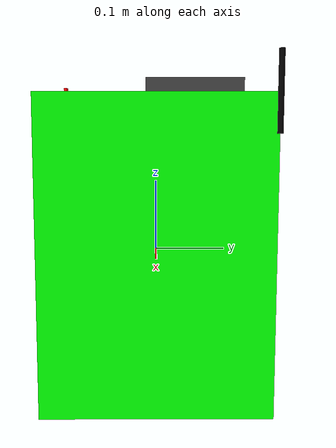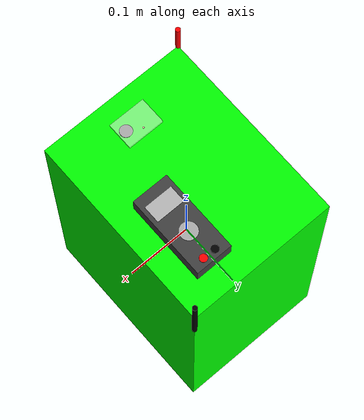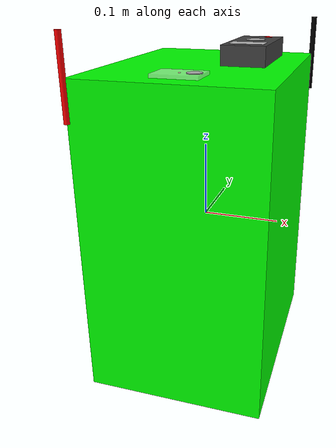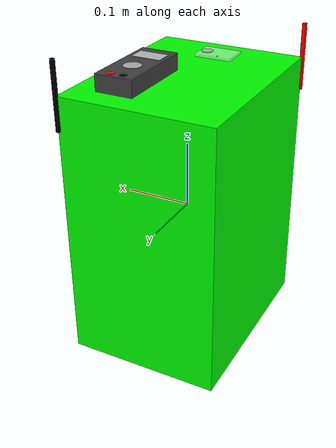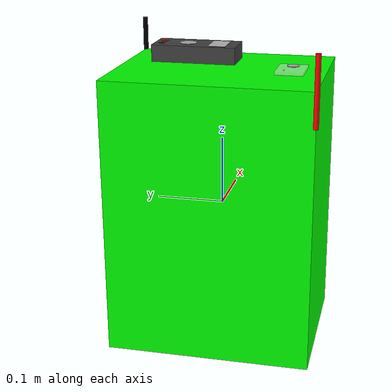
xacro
<?xml version='1.0' encoding='utf-8'?>
<robot xmlns:xacro="http://www.ros.org/wiki/xacro" name="voltmeter_circuit">

    <!-- Arguments -->

    <xacro:arg name="board_id" default="voltmeter_circuit"/>

    <!-- Imported elements -->

    <xacro:include filename="$(find robothon_2023_board_description)/urdf/voltmeter_circuit.urdf.xacro"/>

    <!-- Models -->

    <xacro:task_board board_id="$(arg board_id)" lenght_base_link_box= "0.23" width_base_link_box= "0.30" height_base_link_box= "0.41" height_voltmeter="0.025" height_battery = "0.0043"/>

</robot>

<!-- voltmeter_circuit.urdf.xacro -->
<robot xmlns:xacro="http://www.ros.org/wiki/xacro" name="task_board" lenght_base_link_box= "0.23" width_base_link_box= "0.30" height_base_link_box= "0.41" height_voltmeter="0.025" height_battery="0.0043">

    <!-- Imported elements -->

    <xacro:include filename="$(find robothon_2023_board_description)/urdf/task_board.gazebo.xacro"/>

    <!-- Models -->

    <xacro:macro name="task_board" params="board_id:='task_board' lenght_base_link_box width_base_link_box height_base_link_box height_voltmeter height_battery">

        <xacro:task_board_gazebo board_id="${board_id}"/>

        <link name="${board_id}_base_link">
            <inertial>
                <origin xyz="0 0 ${height_base_link_box/2}" rpy="0 0 0"/>
                <mass value="0.1"/>
                <inertia ixx="0.3" ixy="0.0" ixz="0.0" iyy="0.3" iyz="0.0" izz="0.3"/>
            </inertial>
            <visual>
                <origin xyz="0 0 0" rpy="0 0 0"/>
                <geometry>
                    <box size="${lenght_base_link_box} ${width_base_link_box} ${height_base_link_box}"/>
                </geometry>
                <material name="">
                    <color rgba="0 1 0 1"/>
                </material>
            </visual>
            <collision>
                <origin xyz="0 0 0" rpy="0 0 0"/>
                <geometry>
                    <box size="0.10 0.10 0.10"/>
                </geometry>
            </collision>
        </link>

        <!-- Battery plastic box-->
        <joint name="${board_id}_battery_box_joint" type="fixed">
            <origin xyz="0 -0.10 ${height_base_link_box/2 + height_battery/2}" rpy="${pi} 0 0"/>
            <parent link="${board_id}_base_link"/>
            <child link="${board_id}_battery_box_link"/>
        </joint>

        <link name="${board_id}_battery_box_link">
            <inertial>
                <origin xyz="0 0 0" rpy="0 0 0"/>
                <mass value="2.0"/>
                <inertia ixx="0.3" ixy="0.0" ixz="0.0" iyy="0.3" iyz="0.0" izz="0.3"/>
            </inertial>
            <visual>
                <origin xyz="0 0 0" rpy="0 0 0"/>
                <geometry>
                    <box size="0.05655 0.04072 ${height_battery}"/>
                </geometry>
                <material name="">
                    <color rgba=" 1 1 1 0.5"/>
                </material>
            </visual>
            <collision>
                <origin xyz="0 0 0" rpy="0 0 0"/>
                <geometry>
                    <box size="0.05655 0.04072 ${height_battery}"/>
                </geometry>
            </collision>
        </link>

        <!-- Battery -->
        <joint name="${board_id}_battery_joint" type="fixed">
            <origin xyz="0.01751 0 ${-height_battery/2}" rpy="0 0 0"/>
            <parent link="${board_id}_battery_box_link"/>
            <child link="${board_id}_battery_link"/>
        </joint>

        <link name="${board_id}_battery_link">
            <inertial>
                <origin xyz="0 0 0" rpy="0 0 0"/>
                <mass value="0.1"/>
                <inertia ixx="0.3" ixy="0.0" ixz="0.0" iyy="0.3" iyz="0.0" izz="0.3"/>
            </inertial>
            <visual>
                <origin xyz="0 0 0" rpy="0 0 0"/>
                <geometry>
                    <cylinder radius="0.0091" length="0.001"/>
                </geometry>
                <material name="">
                    <color rgba="0.68 0.68 0.68 1"/>
                </material>
            </visual>
            <collision>
                <origin xyz="0 0 0" rpy="0 0 0"/>
                <geometry>
                    <cylinder radius="0.0091" length="0.001"/>
                </geometry>
            </collision>
        </link>

        <!-- Gold hole inside the battery box -->
        <joint name="${board_id}_battery_gold_hole_joint" type="fixed">
            <origin xyz="-0.00365 -0.01035 0" rpy="0 0 0"/>
            <parent link="${board_id}_battery_box_link"/>
            <child link="${board_id}_battery_gold_hole_link"/>
        </joint>

        <link name="${board_id}_battery_gold_hole_link">
            <inertial>
                <origin xyz="0 0 0" rpy="0 0 0"/>
                <mass value="0.1"/>
                <inertia ixx="0.3" ixy="0.0" ixz="0.0" iyy="0.3" iyz="0.0" izz="0.3"/>
            </inertial>
            <visual>
                <origin xyz="0 0 0" rpy="0 0 0"/>
                <geometry>
                    <cylinder radius="0.0012" length="0.001"/>
                </geometry>
                <material name="">
                    <color rgba="1 0.698 0.4 1"/>
                </material>
            </visual>
            <collision>
                <origin xyz="0 0 0" rpy="0 0 0"/>
                <geometry>
                    <cylinder radius="0.0012" length="0.001"/>
                </geometry>
            </collision>
        </link>

        <!-- Voltmeter -->
        <joint name="${board_id}_voltmeter_joint" type="fixed">
            <origin xyz="0.05 0.05 ${height_base_link_box/2 + height_voltmeter/2}" rpy="${pi} 0 ${pi}"/>
            <parent link="${board_id}_base_link"/>
            <child link="${board_id}_voltmeter_link"/>
        </joint>

        <link name="${board_id}_voltmeter_link">
            <inertial>
                <origin xyz="0 0 0" rpy="0 0 0"/>
                <mass value="2.0"/>
                <inertia ixx="0.3" ixy="0.0" ixz="0.0" iyy="0.3" iyz="0.0" izz="0.3"/>
            </inertial>
            <visual>
                <origin xyz="0 0 0" rpy="0 0 0"/>
                <geometry>
                    <box size="0.05622 0.126 ${height_voltmeter}"/>
                </geometry>
                <material name="">
                    <color rgba=" 0.25 0.25 0.25 1"/>
                </material>
            </visual>
            <collision>
                <origin xyz="0 0 0" rpy="0 0 0"/>
                <geometry>
                    <box size="0.05622 0.126 ${height_voltmeter}"/>
                </geometry>
            </collision>
        </link>

        <!-- Power on circle -->
        <joint name="${board_id}_power_on_joint" type="fixed">
            <origin xyz="0 0.013 ${-height_voltmeter/2}" rpy="0 0 0"/>
            <parent link="${board_id}_voltmeter_link"/>
            <child link="${board_id}_power_on_link"/>
        </joint>

        <link name="${board_id}_power_on_link">
            <inertial>
                <origin xyz="0 0 0" rpy="0 0 0"/>
                <mass value="0.1"/>
                <inertia ixx="0.3" ixy="0.0" ixz="0.0" iyy="0.3" iyz="0.0" izz="0.3"/>
            </inertial>
            <visual>
                <origin xyz="0 0 0" rpy="0 0 0"/>
                <geometry>
                    <cylinder radius="0.013" length="0.001"/>
                </geometry>
                <material name="">
                    <color rgba="0.68 0.68 0.68 1"/>
                </material>
            </visual>
            <collision>
                <origin xyz="0 0 0" rpy="0 0 0"/>
                <geometry>
                    <cylinder radius="0.013" length="0.001"/>
                </geometry>
            </collision>
        </link>

        <!-- Red and black holes -->
        <joint name="${board_id}_red_hole_joint" type="fixed">
            <origin xyz="-0.00952 0.05241 ${-height_voltmeter/2}" rpy="0 0 0"/>
            <parent link="${board_id}_voltmeter_link"/>
            <child link="${board_id}_red_hole_link"/>
        </joint>

        <link name="${board_id}_red_hole_link">
            <inertial>
                <origin xyz="0 0 0" rpy="0 0 0"/>
                <mass value="0.1"/>
                <inertia ixx="0.3" ixy="0.0" ixz="0.0" iyy="0.3" iyz="0.0" izz="0.3"/>
            </inertial>
            <visual>
                <origin xyz="0 0 0" rpy="0 0 0"/>
                <geometry>
                    <cylinder radius="0.00575" length="0.001"/>
                </geometry>
                <material name="">
                    <color rgba="1 0 0 1"/>
                </material>
            </visual>
            <collision>
                <origin xyz="0 0 0" rpy="0 0 0"/>
                <geometry>
                    <cylinder radius="0.00575" length="0.001"/>
                </geometry>
            </collision>
        </link>

        <joint name="${board_id}_black_hole_joint" type="fixed">
            <origin xyz="0.00952 0.05241 ${-height_voltmeter/2}" rpy="0 0 0"/>
            <parent link="${board_id}_voltmeter_link"/>
            <child link="${board_id}_black_hole_link"/>
        </joint>

        <link name="${board_id}_black_hole_link">
            <inertial>
                <origin xyz="0 0 0" rpy="0 0 0"/>
                <mass value="0.1"/>
                <inertia ixx="0.3" ixy="0.0" ixz="0.0" iyy="0.3" iyz="0.0" izz="0.3"/>
            </inertial>
            <visual>
                <origin xyz="0 0 0" rpy="0 0 0"/>
                <geometry>
                    <cylinder radius="0.00575" length="0.001"/>
                </geometry>
                <material name="">
                    <color rgba="0 0 0 1"/>
                </material>
            </visual>
            <collision>
                <origin xyz="0 0 0" rpy="0 0 0"/>
                <geometry>
                    <cylinder radius="0.00575" length="0.001"/>
                </geometry>
            </collision>
        </link>

        <!-- Display -->

        <joint name="${board_id}_display_joint" type="fixed">
            <origin xyz="0 -0.03433 ${-height_voltmeter/2}" rpy="0 0 0"/>
            <parent link="${board_id}_voltmeter_link"/>
            <child link="${board_id}_display_link"/>
        </joint>

        <link name="${board_id}_display_link">
            <inertial>
                <origin xyz="0 0 0" rpy="0 0 0"/>
                <mass value="0.1"/>
                <inertia ixx="0.3" ixy="0.0" ixz="0.0" iyy="0.3" iyz="0.0" izz="0.3"/>
            </inertial>
            <visual>
                <origin xyz="0 0 0" rpy="0 0 0"/>
                <geometry>
                    <box size="0.044 0.0259 0.001"/>
                </geometry>
                <material name="">
                    <color rgba="0.72 0.72 0.72 1"/>
                </material>
            </visual>
            <collision>
                <origin xyz="0 0 0" rpy="0 0 0"/>
                <geometry>
                    <box size="0.044 0.0259 0.001"/>
                </geometry>
            </collision>
        </link>

        <!-- Red and black probes -->

        <joint name="${board_id}_red_probe_joint" type="fixed">
            <origin xyz="${-lenght_base_link_box/2} ${-width_base_link_box/2} ${height_base_link_box/2}" rpy="${pi} 0 0"/>
            <parent link="${board_id}_base_link"/>
            <child link="${board_id}_red_probe_link"/>
        </joint>

        <link name="${board_id}_red_probe_link">
            <inertial>
                <origin xyz="0 0 0" rpy="0 0 0"/>
                <mass value="0.1"/>
                <inertia ixx="0.3" ixy="0.0" ixz="0.0" iyy="0.3" iyz="0.0" izz="0.3"/>
            </inertial>
            <visual>
                <origin xyz="0 0 0" rpy="0 0 0"/>
                <geometry>
                    <cylinder radius="0.00362" length="0.1"/>
                </geometry>
                <material name="">
                    <color rgba="1 0 0 1"/>
                </material>
            </visual>
            <collision>
                <origin xyz="0 0 0" rpy="0 0 0"/>
                <geometry>
                    <cylinder radius="0.00362" length="0.1"/>
                </geometry>
            </collision>
        </link>

        <joint name="${board_id}_black_probe_joint" type="fixed">
            <origin xyz="${lenght_base_link_box/2} ${width_base_link_box/2} ${height_base_link_box/2}" rpy="${pi} 0 0"/>
            <parent link="${board_id}_base_link"/>
            <child link="${board_id}_black_probe_link"/>
        </joint>

        <link name="${board_id}_black_probe_link">
            <inertial>
                <origin xyz="0 0 0" rpy="0 0 0"/>
                <mass value="0.1"/>
                <inertia ixx="0.3" ixy="0.0" ixz="0.0" iyy="0.3" iyz="0.0" izz="0.3"/>
            </inertial>
            <visual>
                <origin xyz="0 0 0" rpy="0 0 0"/>
                <geometry>
                    <cylinder radius="0.00362" length="0.1"/>
                </geometry>
                <material name="">
                    <color rgba="0 0 0 1"/>
                </material>
            </visual>
            <collision>
                <origin xyz="0 0 0" rpy="0 0 0"/>
                <geometry>
                    <cylinder radius="0.00362" length="0.1"/>
                </geometry>
            </collision>
        </link>

    </xacro:macro>

</robot>
